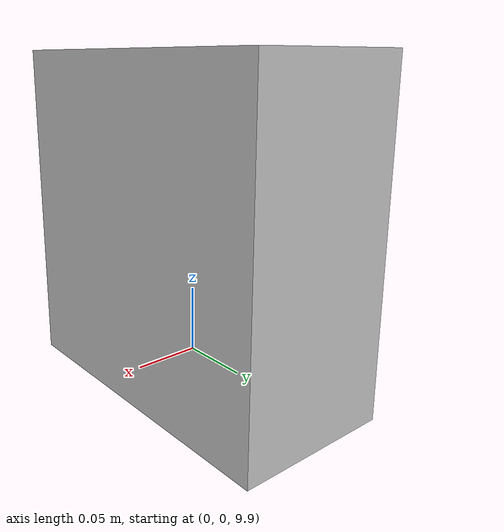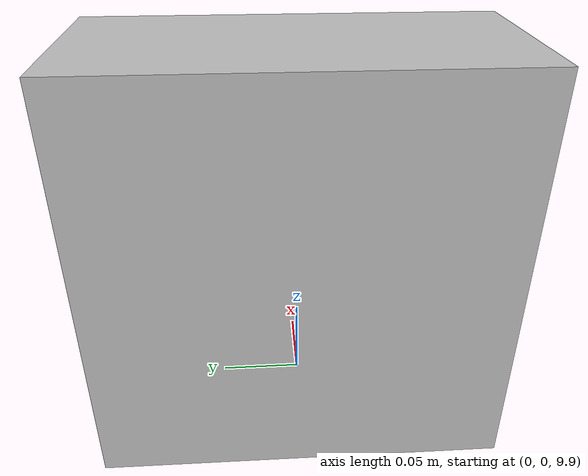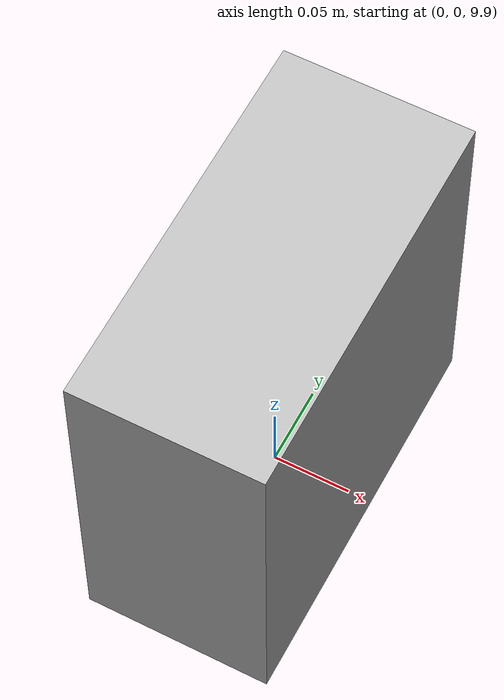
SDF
<?xml version="1.0" ?>
<sdf version="1.8">
  <model name="overhead_camera">
    <static>true</static>
    <pose>0 0 10 0 1.57079632679 0</pose>

    <link name="camera_link">
      <sensor name="overhead_camera_sensor" type="camera">
        <always_on>true</always_on>
        <update_rate>30</update_rate>
        <visualize>true</visualize>

        <camera>
          <horizontal_fov>1.57</horizontal_fov>
          <image>
            <width>3840</width>
            <height>2160</height>
            <format>R8G8B8</format>
          </image>
          <clip>
            <near>0.1</near>
            <far>100</far>
          </clip>
        </camera>
      </sensor>

      <visual name="camera_box">
        <geometry>
          <box>
            <size>0.25 0.25 0.12</size>
          </box>
        </geometry>
      </visual>
    </link>
  </model>
</sdf>
